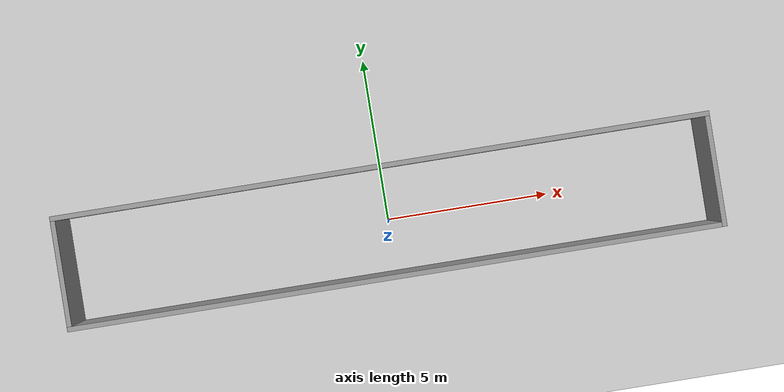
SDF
<?xml version="1.0" ?>
<sdf version="1.4">
  <world name="default">
    <include>
      <uri>model://ground_plane</uri>
    </include>

    <include>
      <uri>model://sun</uri>
    </include>

    <model name='rectangle'>
      <pose frame=''>0 0 0 0 -0 0</pose>
      <link name='Wall_2'>
        <collision name='Wall_2_Collision'>
          <geometry>
            <box>
              <size>20 0.15 2.5</size>
            </box>
          </geometry>
          <pose frame=''>0 0 1.25 0 -0 0</pose>
          <max_contacts>10</max_contacts>
          <surface>
            <contact>
              <ode/>
            </contact>
            <bounce/>
            <friction>
              <torsional>
                <ode/>
              </torsional>
              <ode/>
            </friction>
          </surface>
        </collision>
        <visual name='Wall_2_Visual'>
          <pose frame=''>0 0 1.25 0 -0 0</pose>
          <geometry>
            <box>
              <size>20 0.15 2.5</size>
            </box>
          </geometry>
          <material>
            <script>
              <uri>file://media/materials/scripts/gazebo.material</uri>
              <name>Gazebo/Grey</name>
            </script>
            <ambient>1 1 1 1</ambient>
          </material>
          <meta>
            <layer>0</layer>
          </meta>
        </visual>
        <pose frame=''>0 1.675 0 0 -0 0</pose>
        <self_collide>0</self_collide>
        <kinematic>0</kinematic>
      </link>
      <link name='Wall_3'>
        <collision name='Wall_3_Collision'>
          <geometry>
            <box>
              <size>3.5 0.15 2.5</size>
            </box>
          </geometry>
          <pose frame=''>0 0 1.25 0 -0 0</pose>
          <max_contacts>10</max_contacts>
          <surface>
            <contact>
              <ode/>
            </contact>
            <bounce/>
            <friction>
              <torsional>
                <ode/>
              </torsional>
              <ode/>
            </friction>
          </surface>
        </collision>
        <visual name='Wall_3_Visual'>
          <pose frame=''>0 0 1.25 0 -0 0</pose>
          <geometry>
            <box>
              <size>3.5 0.15 2.5</size>
            </box>
          </geometry>
          <material>
            <script>
              <uri>file://media/materials/scripts/gazebo.material</uri>
              <name>Gazebo/Grey</name>
            </script>
            <ambient>1 1 1 1</ambient>
          </material>
          <meta>
            <layer>0</layer>
          </meta>
        </visual>
        <pose frame=''>9.925 0 0 0 0 -1.5708</pose>
        <self_collide>0</self_collide>
        <kinematic>0</kinematic>
      </link>
      <link name='Wall_4'>
        <collision name='Wall_4_Collision'>
          <geometry>
            <box>
              <size>20 0.15 2.5</size>
            </box>
          </geometry>
          <pose frame=''>0 0 1.25 0 -0 0</pose>
          <max_contacts>10</max_contacts>
          <surface>
            <contact>
              <ode/>
            </contact>
            <bounce/>
            <friction>
              <torsional>
                <ode/>
              </torsional>
              <ode/>
            </friction>
          </surface>
        </collision>
        <visual name='Wall_4_Visual'>
          <pose frame=''>0 0 1.25 0 -0 0</pose>
          <geometry>
            <box>
              <size>20 0.15 2.5</size>
            </box>
          </geometry>
          <material>
            <script>
              <uri>file://media/materials/scripts/gazebo.material</uri>
              <name>Gazebo/Grey</name>
            </script>
            <ambient>1 1 1 1</ambient>
          </material>
          <meta>
            <layer>0</layer>
          </meta>
        </visual>
        <pose frame=''>0 -1.675 0 0 -0 3.14159</pose>
        <self_collide>0</self_collide>
        <kinematic>0</kinematic>
      </link>
      <link name='Wall_5'>
        <collision name='Wall_5_Collision'>
          <geometry>
            <box>
              <size>3.5 0.15 2.5</size>
            </box>
          </geometry>
          <pose frame=''>0 0 1.25 0 -0 0</pose>
          <max_contacts>10</max_contacts>
          <surface>
            <contact>
              <ode/>
            </contact>
            <bounce/>
            <friction>
              <torsional>
                <ode/>
              </torsional>
              <ode/>
            </friction>
          </surface>
        </collision>
        <visual name='Wall_5_Visual'>
          <pose frame=''>0 0 1.25 0 -0 0</pose>
          <geometry>
            <box>
              <size>3.5 0.15 2.5</size>
            </box>
          </geometry>
          <material>
            <script>
              <uri>file://media/materials/scripts/gazebo.material</uri>
              <name>Gazebo/Grey</name>
            </script>
            <ambient>1 1 1 1</ambient>
          </material>
          <meta>
            <layer>0</layer>
          </meta>
        </visual>
        <pose frame=''>-9.925 0 0 0 -0 1.5708</pose>
        <self_collide>0</self_collide>
        <kinematic>0</kinematic>
      </link>
      <static>1</static>
    </model>

    <gui fullscreen='0'>
      <camera name='user_camera'>
        <pose frame=''>22.9992 -4.15168 13.1883 -0 0.551643 3.04819</pose>
        <view_controller>orbit</view_controller>
        <projection_type>perspective</projection_type>
      </camera>
    </gui>

    <!-- reference to your plugin -->
    <plugin name="gazebo_tutorials" filename="libgazebo_tutorials.so"/>
  </world>
</sdf>
